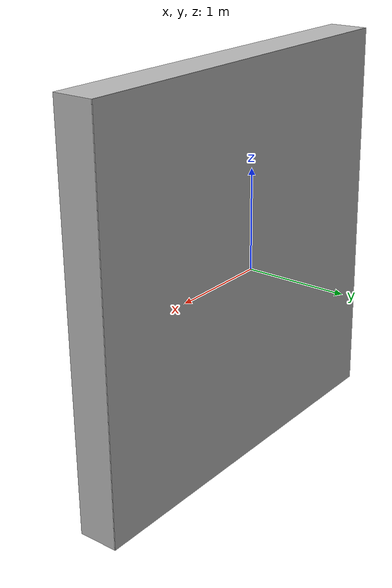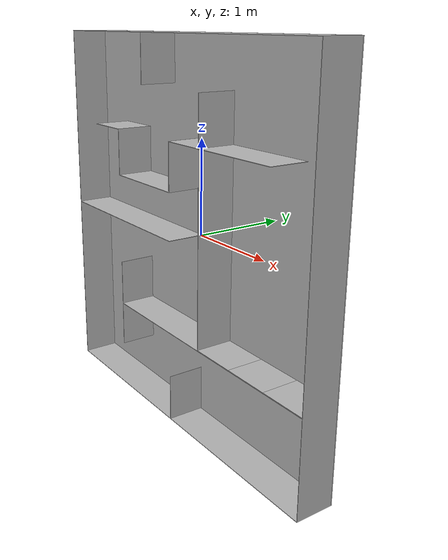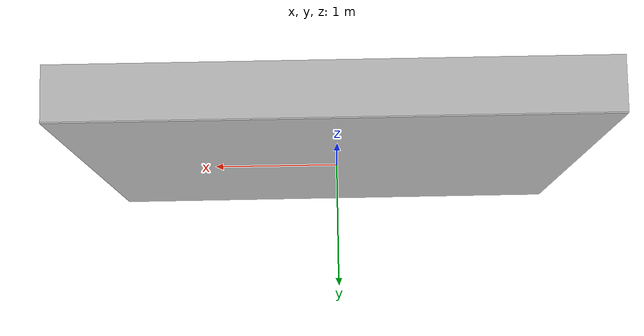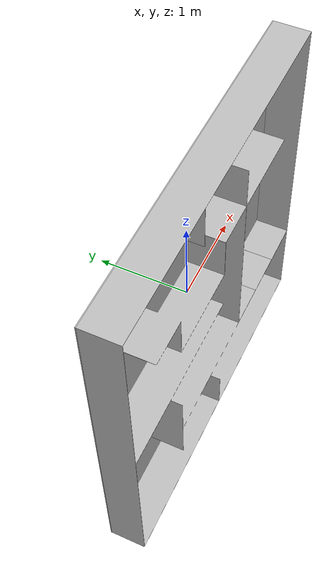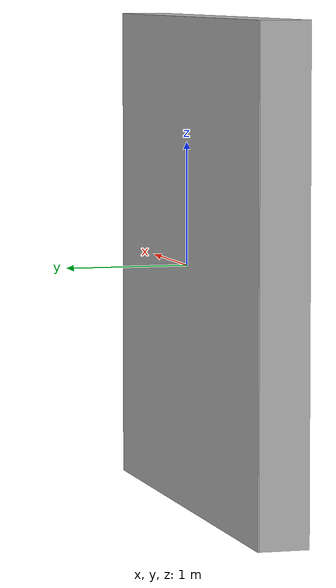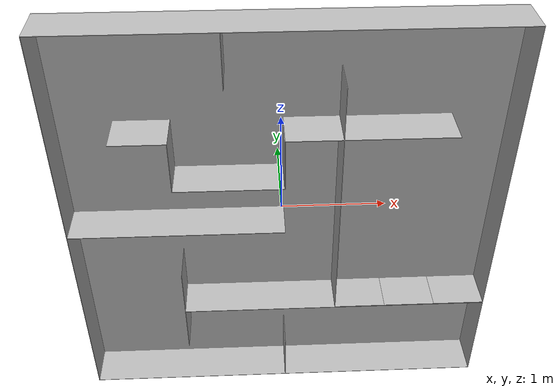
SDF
<sdf version='1.6'>
  <model name='racetrack_v2'>
    <link name='base_link'>
      <pose frame=''>0 0 0 0 -0 0</pose>
      <inertial>
        <pose frame=''>0.028358 -0.052278 -0.00892 0 -0 0</pose>
        <mass>223.815</mass>
        <inertia>
          <ixx>330.42</ixx>
          <ixy>0.266283</ixy>
          <ixz>5.21139</ixz>
          <iyy>438.745</iyy>
          <iyz>-0.304492</iyz>
          <izz>545.052</izz>
        </inertia>
      </inertial>
      <collision name='base_link_collision'>
        <pose frame=''>0 0 0 0 -0 0</pose>
        <geometry>
          <mesh>
            <scale>1 1 1</scale>
            <uri>model://racetrack_v2/meshes/base_link.dae</uri>
          </mesh>
        </geometry>
      </collision>
      <collision name='base_link_fixed_joint_lump__wall_collision_1'>
        <pose frame=''>-1.9794 -0.005 2.0076 1.5708 -0 0</pose>
        <geometry>
          <mesh>
            <scale>1 1 1</scale>
            <uri>model://racetrack_v2/meshes/wall.STL</uri>
          </mesh>
        </geometry>
      </collision>
      <collision name='base_link_fixed_joint_lump__b3_collision_2'>
        <pose frame=''>0.0131 -0.404994 0.510099 3.14159 -1.57079 -3e-06</pose>
        <geometry>
          <mesh>
            <scale>1 1 1</scale>
            <uri>model://racetrack_v2/meshes/b3.dae</uri>
          </mesh>
        </geometry>
      </collision>
      <collision name='base_link_fixed_joint_lump__d1_collision_3'>
        <pose frame=''>2.0206 -0.404989 -0.989901 0 -7e-06 -3.14159</pose>
        <geometry>
          <mesh>
            <scale>1 1 1</scale>
            <uri>model://racetrack_v2/meshes/d1.dae</uri>
          </mesh>
        </geometry>
      </collision>
      <collision name='base_link_fixed_joint_lump__d2_collision_4'>
        <pose frame=''>1.0206 -0.404989 -0.984901 -3.14159 -0 0</pose>
        <geometry>
          <mesh>
            <scale>1 1 1</scale>
            <uri>model://racetrack_v2/meshes/d2.dae</uri>
          </mesh>
        </geometry>
      </collision>
      <collision name='base_link_fixed_joint_lump__d3_collision_5'>
        <pose frame=''>0.5231 -0.404989 -0.984901 -3.14159 -0 0</pose>
        <geometry>
          <mesh>
            <scale>1 1 1</scale>
            <uri>model://racetrack_v2/meshes/d3.dae</uri>
          </mesh>
        </geometry>
      </collision>
      <visual name='base_link_visual'>
        <pose frame=''>0 0 0 0 -0 0</pose>
        <geometry>
          <mesh>
            <scale>1 1 1</scale>
            <uri>model://racetrack_v2/meshes/base_link.dae</uri>
          </mesh>
        </geometry>
      </visual>
      <visual name='base_link_fixed_joint_lump__wall_visual_1'>
        <pose frame=''>-1.9794 -0.005 2.0076 1.5708 -0 0</pose>
        <geometry>
          <mesh>
            <scale>1 1 1</scale>
            <uri>model://racetrack_v2/meshes/wall.STL</uri>
          </mesh>
        </geometry>
      </visual>
      <visual name='base_link_fixed_joint_lump__b3_visual_2'>
        <pose frame=''>0.0131 -0.404994 0.510099 3.14159 -1.57079 -3e-06</pose>
        <geometry>
          <mesh>
            <scale>1 1 1</scale>
            <uri>model://racetrack_v2/meshes/b3.dae</uri>
          </mesh>
        </geometry>
      </visual>
      <visual name='base_link_fixed_joint_lump__d1_visual_3'>
        <pose frame=''>2.0206 -0.404989 -0.989901 0 -7e-06 -3.14159</pose>
        <geometry>
          <mesh>
            <scale>1 1 1</scale>
            <uri>model://racetrack_v2/meshes/d1.dae</uri>
          </mesh>
        </geometry>
      </visual>
      <visual name='base_link_fixed_joint_lump__d2_visual_4'>
        <pose frame=''>1.0206 -0.404989 -0.984901 -3.14159 -0 0</pose>
        <geometry>
          <mesh>
            <scale>1 1 1</scale>
            <uri>model://racetrack_v2/meshes/d2.dae</uri>
          </mesh>
        </geometry>
      </visual>
      <visual name='base_link_fixed_joint_lump__d3_visual_5'>
        <pose frame=''>0.5231 -0.404989 -0.984901 -3.14159 -0 0</pose>
        <geometry>
          <mesh>
            <scale>1 1 1</scale>
            <uri>model://racetrack_v2/meshes/d3.dae</uri>
          </mesh>
        </geometry>
      </visual>
    </link>
  </model>
</sdf>
